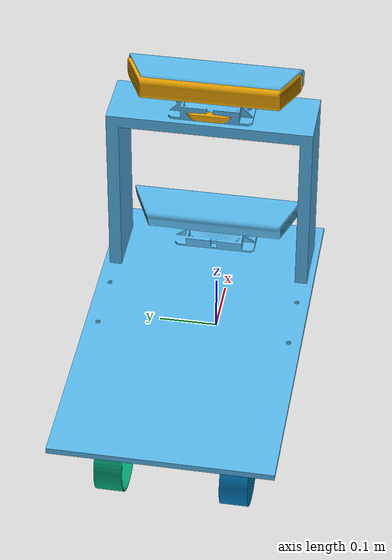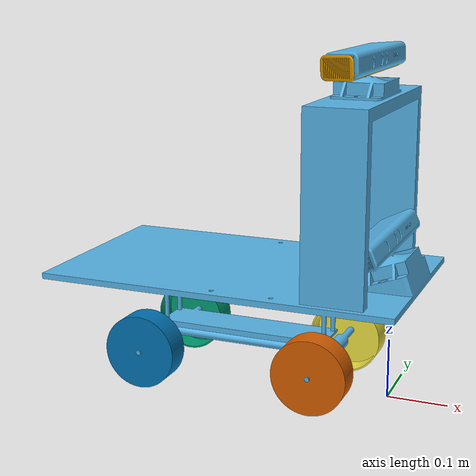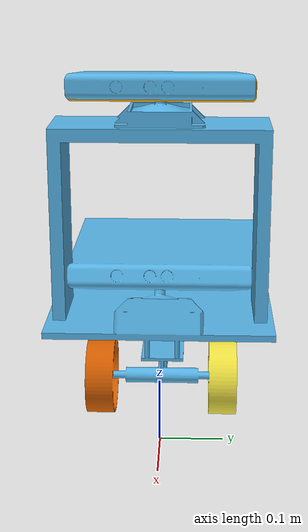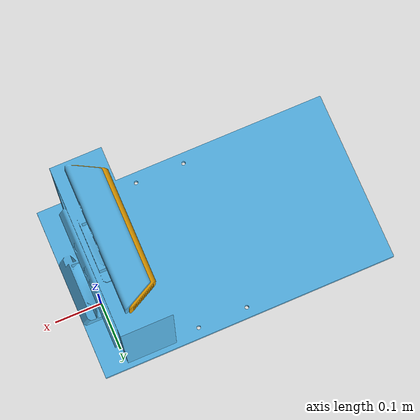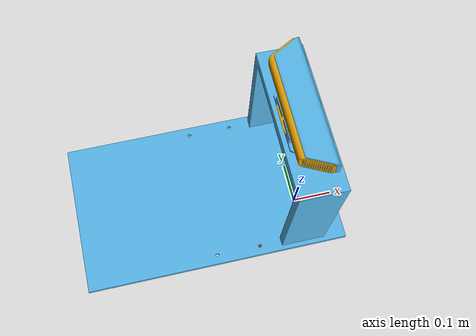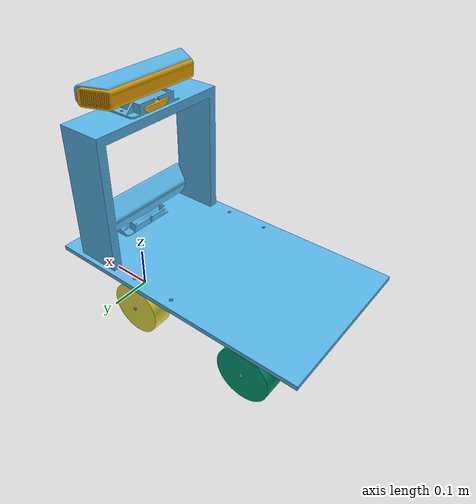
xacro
<?xml version="1.0" ?>
<robot name="$(arg player_name)" xmlns:xacro="http://ros.org/wiki/xacro">
  <xacro:include filename="$(find robot_description)/urdf/common_properties.xacro"/>

  <xacro:property name="player_name" value="$(arg player_name)"  />
  <xacro:property name="player_color" value="$(arg player_color)"  />
  <xacro:property name="base_color" value="$(arg base_color)" />
  <xacro:property name="scan_color" value="$(arg scan_color)" />
   <xacro:property name="orientacao" value="$(arg orientacao)" />

  <xacro:include filename="$(find robot_description)/urdf/robot_final.gazebo.macro.xacro"/>

  <link name="base_footprint"/>

  <joint name="base_joint" type="fixed">
    <parent link="base_footprint"/>
    <child link="base_link" />
    <origin xyz="0 0 0.200" rpy="0 0 0"/>
  </joint>

  <link name="base_link">
    <visual>
      <origin xyz="-0.55 -0.175 -0.150" rpy="0 0 0"/>
      <geometry>
        <mesh filename="$(find robot_description)/meshes/CarroSemRodasZ.STL" scale="0.001 0.001 0.001 "/>
      </geometry>
      <material name="${player_color}"/>
    </visual>

    <collision>
      <origin xyz="-0.250 0 0.222" rpy="0 0 0"/>
      <geometry>
        <box size="0.600 0.350 0.480"/>
      </geometry>
    </collision>

    <inertial>
      <origin xyz="-0.250 0 0.172" rpy="0 0 0"/>
      <mass value="1.3729096e+00"/>
      <inertia ixx="8.7002718e-03" ixy="-4.7576583e-05" ixz="1.1160499e-04"
               iyy="8.6195418e-03" iyz="-3.5422299e-06"
               izz="1.4612727e-02" />
    </inertial>
  </link>

  <!-- wheel_left_joint -->

  <joint name="wheel_left_joint" type="continuous">
    <parent link="base_link"/>
    <child link="wheel_left_link"/>
    <origin xyz="-0.400 0.1225 -0.1375" rpy="0 0 0"/>
    <axis xyz="0 1 0"/>
  </joint>

  <link name="wheel_left_link">
    <visual>
      <origin xyz="0.0625 0 -0.0625" rpy="0 0 3.14"/>
      <geometry>
        <mesh filename="$(find robot_description)/meshes/RodaPecaCanto.STL" scale="0.001 0.001 0.001"/>
      </geometry>
      <material name="${player_color}"/>
    </visual>

    <collision>
      <origin xyz="0 -0.0215 0" rpy="1.57 0 0"/>
      <geometry>
        <cylinder length="0.045" radius="0.0625"/>
      </geometry>
    </collision>

    <inertial>
      <origin xyz="0 -0.0215 0" rpy="1.57 0 0"/>
      <mass value="0.5" />
      <inertia ixx="1.1175580e-05" ixy="-4.2369783e-11" ixz="-5.9381719e-09"
               iyy="1.1192413e-05" iyz="-1.4400107e-11"
               izz="2.0712558e-05" />
      </inertial>
  </link>

<!-- wheel_left_front_joint -->

  <joint name="wheel_left_front_joint" type="continuous">
    <parent link="base_link"/>
    <child link="wheel_left_front_link"/>
    <origin xyz="-0.100 0.1225 -0.1375" rpy="0 0 0"/>
    <axis xyz="0 1 0"/>
  </joint>

  <link name="wheel_left_front_link">
    <visual>
      <origin xyz="0.0625 0 -0.0625" rpy="0 0 3.14"/>
      <geometry>
        <mesh filename="$(find robot_description)/meshes/RodaPecaCanto.STL" scale="0.001 0.001 0.001"/>
      </geometry>
      <material name="${player_color}"/>
    </visual>

    <collision>
      <origin xyz="0 -0.0215 0" rpy="1.57 0 0"/>
      <geometry>
        <cylinder length="0.045" radius="0.0625"/>
      </geometry>
    </collision>

    <inertial>
      <origin xyz="0 -0.0215 0" rpy="1.57 0 0"/>
      <mass value="0.5" />
      <inertia ixx="1.1175580e-05" ixy="-4.2369783e-11" ixz="-5.9381719e-09"
               iyy="1.1192413e-05" iyz="-1.4400107e-11"
               izz="2.0712558e-05" />
      </inertial>
  </link>

  <!-- wheel_right_joint -->

  <joint name="wheel_right_joint" type="continuous">
    <parent link="base_link"/>
    <child link="wheel_right_link"/>
    <origin xyz="-0.400 -0.1225 -0.1375" rpy="0 0 0"/>
    <axis xyz="0 1 0"/>
  </joint>

  <link name="wheel_right_link">
    <visual>
      <origin xyz="-0.0625 0 -0.0625" rpy="0 0 0"/>
      <geometry>
        <mesh filename="$(find robot_description)/meshes/RodaPecaCanto.STL" scale="0.001 0.001 0.001"/>
      </geometry>
      <material name="${player_color}"/>
    </visual>

    <collision>
      <origin xyz="0 0.0235 0" rpy="1.57 0 0"/>
      <geometry>
        <cylinder length="0.045" radius="0.0625"/>
      </geometry>
    </collision>

    <inertial>
      <origin xyz="0 0.0235 0" rpy="1.57 0 0"/>
      <mass value="0.5" />
      <inertia ixx="1.1175580e-05" ixy="-4.2369783e-11" ixz="-5.9381719e-09"
               iyy="1.1192413e-05" iyz="-1.4400107e-11"
               izz="2.0712558e-05" />
      </inertial>
  </link>

  <!-- wheel_right_front_joint -->

 <joint name="wheel_right_front_joint" type="continuous">
    <parent link="base_link"/>
    <child link="wheel_right_front_link"/>
    <origin xyz="-0.100 -0.1225 -0.1375" rpy="0 0 0"/>
    <axis xyz="0 1 0"/>
  </joint>

  <link name="wheel_right_front_link">
    <visual>
      <origin xyz="-0.0625 0 -0.0625" rpy="0 0 0"/>
      <geometry>
        <mesh filename="$(find robot_description)/meshes/RodaPecaCanto.STL" scale="0.001 0.001 0.001"/>
      </geometry>
      <material name="${player_color}"/>
    </visual>

    <collision>
      <origin xyz="0 0.0235 0" rpy="1.57 0 0"/>
      <geometry>
        <cylinder length="0.045" radius="0.0625"/>
      </geometry>
    </collision>

    <inertial>
      <origin xyz="0 0.0235 0" rpy="1.57 0 0"/>
      <mass value="0.5" />
      <inertia ixx="1.1175580e-05" ixy="-4.2369783e-11" ixz="-5.9381719e-09"
               iyy="1.1192413e-05" iyz="-1.4400107e-11"
               izz="2.0712558e-05" />
      </inertial>
  </link>

<!-- Daniel -->

  <joint name="imu_joint" type="fixed">
    <parent link="base_link"/>
    <child link="imu_link"/>
    <origin xyz="0.0 0 0.068" rpy="0 0 0"/>
  </joint>

  <link name="imu_link"/>
<!-- Daniel End -->

<!-- Scan base sensors -->

<!-- ett -->

  <!-- Camera link -->
  <joint name="camera_joint" type="fixed">
    <origin xyz="-0.05 0 0.350" rpy="0 0 0"/>
    <parent link="base_link"/>
    <child link="camera_link"/>
  </joint>

  <link name="camera_link">

  </link>

  <!-- camera_rgb_joint -->
  <joint name="camera_rgb_joint" type="fixed">
    <origin xyz="0 0 0" rpy="0 0 0"/>
    <parent link="camera_link"/>
    <child link="camera_rgb_frame"/>
  </joint>

  <link name="camera_rgb_frame">
    <visual>
      <origin xyz="0.03 -0.138 -0.05 " rpy="0 0 1.57"/>
      <geometry>
        <mesh filename="$(find robot_description)/meshes/KinectZ.STL" scale="0.001 0.001 0.001"/>
      </geometry>
      <material name="${base_color}"/>
    </visual>

    <collision>
      <origin xyz="0 0 0" rpy="0 0 0"/>
      <geometry>
        <box size="0.1 0.3 0.1"/>
      </geometry>
    </collision>
      </link>

  <!-- camera_rgb_optical_joint -->
  <joint name="camera_rgb_optical_joint" type="fixed">
    <origin xyz="0 0 0" rpy="-1.57 0 -1.57"/>
    <parent link="camera_rgb_frame"/>
    <child link="camera_rgb_optical_frame"/>
  </joint>
  <link name="camera_rgb_optical_frame"/>

</robot>

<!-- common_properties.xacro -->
<robot name="xacro_properties" xmlns:xacro="http://ros.org/wiki/xacro">

  <!-- Init colour -->
  <material name="Black">
      <color rgba="0.0 0.0 0.0 1.0"/>
  </material>

  <material name="DarkGrey">
    <color rgba="0.15 0.15 0.15 1.0"/>
  </material>

  <material name="FlatBlack">
    <color rgba="0.05 0.05 0.05 1.0"/>
  </material>
  <material name="LightBlack">
    <color rgba="0.4 0.4 0.4 1.0"/>
  </material>

  <material name="Blue">
    <color rgba="0.0 0.0 0.8 1.0"/>
  </material>

  <material name="Green">
    <color rgba="0.0 0.8 0.0 1.0"/>
  </material>

  <material name="Grey">
    <color rgba="0.5 0.5 0.5 1.0"/>
  </material>

  <material name="Orange">
    <color rgba="${255/255} ${108/255} ${10/255} 1.0"/>
  </material>

  <material name="Brown">
    <color rgba="${222/255} ${207/255} ${195/255} 1.0"/>
  </material>

    <material name="Red">
    <color rgba="0.8 0.0 0.0 1.0"/>
  </material>

    <material name="White">
    <color rgba="1.0 1.0 1.0 1.0"/>
  </material>
</robot>
